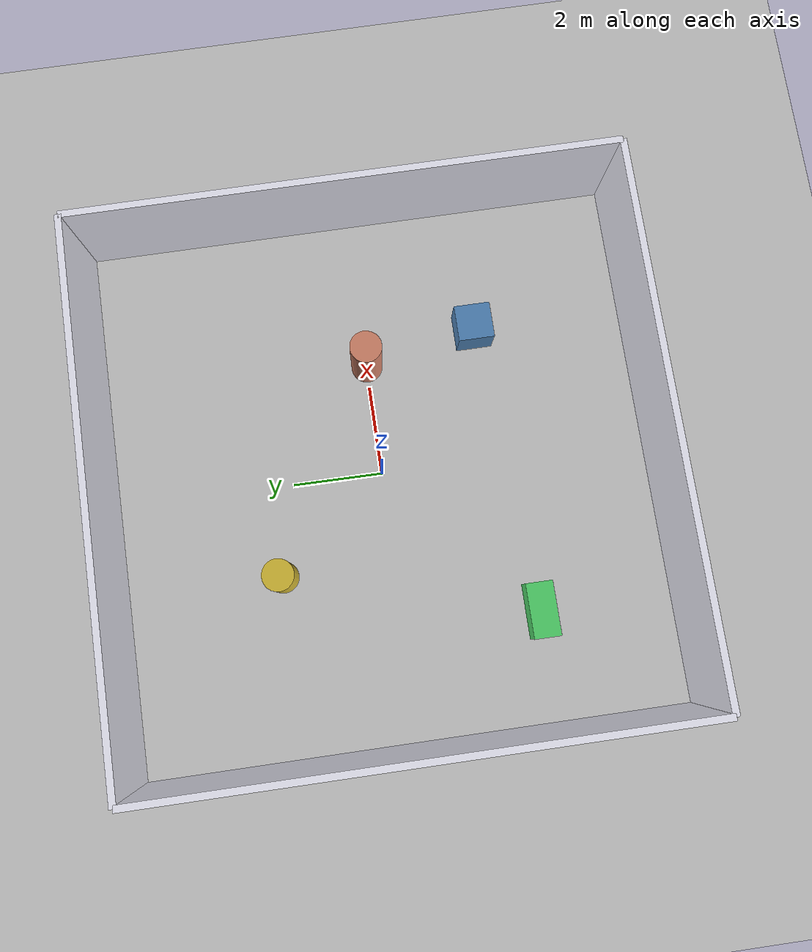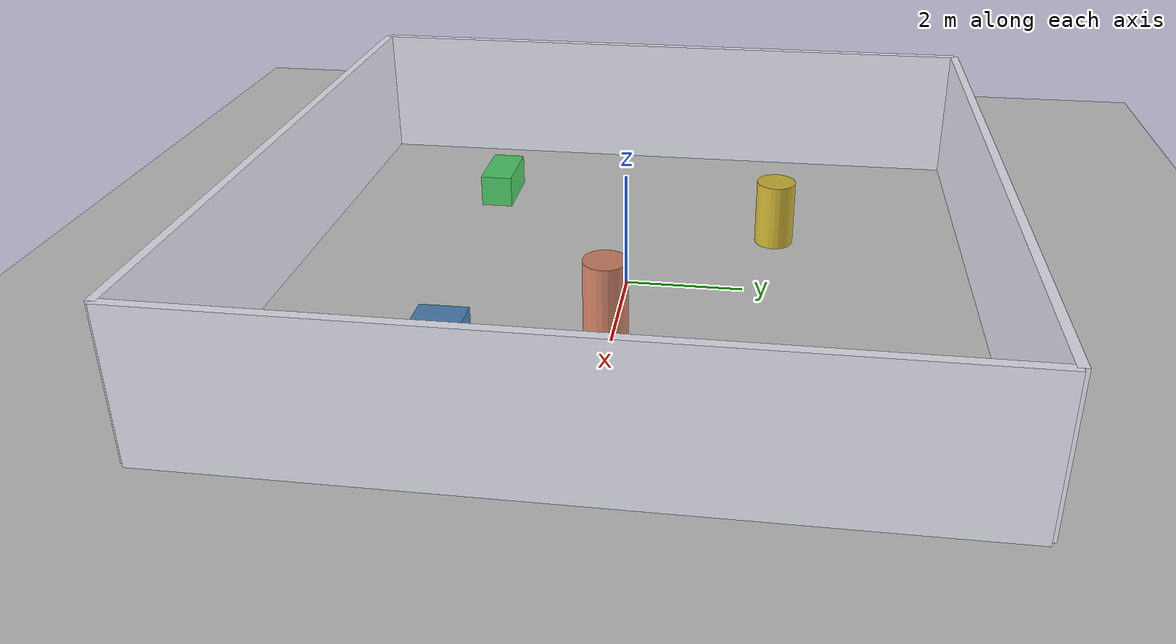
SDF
<?xml version="1.0"?>
<sdf version="1.9">
  <world name="agenticros_indoor">

    <!-- ====== System plugins ====== -->
    <plugin filename="gz-sim-physics-system" name="gz::sim::systems::Physics"/>
    <plugin filename="gz-sim-sensors-system" name="gz::sim::systems::Sensors">
      <render_engine>ogre2</render_engine>
    </plugin>
    <plugin filename="gz-sim-user-commands-system" name="gz::sim::systems::UserCommands"/>
    <plugin filename="gz-sim-scene-broadcaster-system" name="gz::sim::systems::SceneBroadcaster"/>
    <plugin filename="gz-sim-imu-system" name="gz::sim::systems::Imu"/>

    <gravity>0 0 -9.81</gravity>

    <gui fullscreen="false">
      <plugin filename="MinimalScene" name="3D View">
        <gz-gui>
          <title>3D View</title>
          <property type="bool" key="showTitleBar">false</property>
          <property type="string" key="state">docked</property>
        </gz-gui>
        <engine>ogre2</engine>
        <scene>scene</scene>
        <ambient_light>0.4 0.4 0.4</ambient_light>
        <background_color>0.8 0.8 0.8</background_color>
        <camera_pose>-7 -7 6 0 0.6 0.78</camera_pose>
      </plugin>
    </gui>

    <!-- ====== Lighting ====== -->
    <light type="directional" name="sun">
      <cast_shadows>true</cast_shadows>
      <pose>0 0 10 0 0 0</pose>
      <diffuse>0.9 0.9 0.9 1</diffuse>
      <specular>0.2 0.2 0.2 1</specular>
      <direction>-0.3 0.2 -0.9</direction>
    </light>

    <!-- ====== Ground ====== -->
    <model name="ground_plane">
      <static>true</static>
      <link name="link">
        <collision name="collision">
          <geometry><plane><normal>0 0 1</normal><size>20 20</size></plane></geometry>
        </collision>
        <visual name="visual">
          <geometry><plane><normal>0 0 1</normal><size>20 20</size></plane></geometry>
          <material>
            <ambient>0.6 0.6 0.6 1</ambient>
            <diffuse>0.75 0.75 0.75 1</diffuse>
            <specular>0.05 0.05 0.05 1</specular>
          </material>
        </visual>
      </link>
    </model>

    <!-- ====== Walls (12m x 12m room, 2.5m tall, 0.15m thick) ====== -->
    <model name="walls">
      <static>true</static>
      <link name="link">
        <!-- North wall (+Y) -->
        <collision name="north_col">
          <pose>0 6 1.25 0 0 0</pose>
          <geometry><box><size>12 0.15 2.5</size></box></geometry>
        </collision>
        <visual name="north_vis">
          <pose>0 6 1.25 0 0 0</pose>
          <geometry><box><size>12 0.15 2.5</size></box></geometry>
          <material><ambient>0.85 0.85 0.9 1</ambient><diffuse>0.9 0.9 0.95 1</diffuse></material>
        </visual>
        <!-- South wall (-Y) -->
        <collision name="south_col">
          <pose>0 -6 1.25 0 0 0</pose>
          <geometry><box><size>12 0.15 2.5</size></box></geometry>
        </collision>
        <visual name="south_vis">
          <pose>0 -6 1.25 0 0 0</pose>
          <geometry><box><size>12 0.15 2.5</size></box></geometry>
          <material><ambient>0.85 0.85 0.9 1</ambient><diffuse>0.9 0.9 0.95 1</diffuse></material>
        </visual>
        <!-- East wall (+X) -->
        <collision name="east_col">
          <pose>6 0 1.25 0 0 0</pose>
          <geometry><box><size>0.15 12 2.5</size></box></geometry>
        </collision>
        <visual name="east_vis">
          <pose>6 0 1.25 0 0 0</pose>
          <geometry><box><size>0.15 12 2.5</size></box></geometry>
          <material><ambient>0.85 0.85 0.9 1</ambient><diffuse>0.9 0.9 0.95 1</diffuse></material>
        </visual>
        <!-- West wall (-X) -->
        <collision name="west_col">
          <pose>-6 0 1.25 0 0 0</pose>
          <geometry><box><size>0.15 12 2.5</size></box></geometry>
        </collision>
        <visual name="west_vis">
          <pose>-6 0 1.25 0 0 0</pose>
          <geometry><box><size>0.15 12 2.5</size></box></geometry>
          <material><ambient>0.85 0.85 0.9 1</ambient><diffuse>0.9 0.9 0.95 1</diffuse></material>
        </visual>
      </link>
    </model>

    <!-- ====== Person-sized cylinder (for ros2_follow_me depth-mode smoke test) ====== -->
    <!--
      Roughly human-shaped: 0.35 m radius, 1.7 m tall, centered ~2.5 m in front
      of the AMR's spawn pose (the AMR spawns at origin facing +X by default).
    -->
    <model name="person_target">
      <static>true</static>
      <pose>2.5 0 0.85 0 0 0</pose>
      <link name="link">
        <inertial>
          <mass>60</mass>
          <inertia><ixx>14.7</ixx><iyy>14.7</iyy><izz>3.7</izz><ixy>0</ixy><ixz>0</ixz><iyz>0</iyz></inertia>
        </inertial>
        <collision name="collision">
          <geometry><cylinder><radius>0.35</radius><length>1.7</length></cylinder></geometry>
        </collision>
        <visual name="visual">
          <geometry><cylinder><radius>0.35</radius><length>1.7</length></cylinder></geometry>
          <material><ambient>0.7 0.4 0.3 1</ambient><diffuse>0.8 0.5 0.4 1</diffuse></material>
        </visual>
      </link>
    </model>

    <!-- ====== A few static obstacles to give the LIDAR / depth camera structure ====== -->
    <model name="obstacle_box_1">
      <static>true</static>
      <pose>3 -2.5 0.4 0 0 0</pose>
      <link name="link">
        <collision name="c"><geometry><box><size>0.8 0.8 0.8</size></box></geometry></collision>
        <visual name="v">
          <geometry><box><size>0.8 0.8 0.8</size></box></geometry>
          <material><ambient>0.3 0.5 0.7 1</ambient><diffuse>0.3 0.5 0.7 1</diffuse></material>
        </visual>
      </link>
    </model>

    <model name="obstacle_cyl_1">
      <static>true</static>
      <pose>-2 2.5 0.6 0 0 0</pose>
      <link name="link">
        <collision name="c"><geometry><cylinder><radius>0.35</radius><length>1.2</length></cylinder></geometry></collision>
        <visual name="v">
          <geometry><cylinder><radius>0.35</radius><length>1.2</length></cylinder></geometry>
          <material><ambient>0.7 0.6 0.2 1</ambient><diffuse>0.8 0.7 0.2 1</diffuse></material>
        </visual>
      </link>
    </model>

    <model name="obstacle_box_2">
      <static>true</static>
      <pose>-3.5 -3 0.3 0 0 0</pose>
      <link name="link">
        <collision name="c"><geometry><box><size>1.2 0.6 0.6</size></box></geometry></collision>
        <visual name="v">
          <geometry><box><size>1.2 0.6 0.6</size></box></geometry>
          <material><ambient>0.3 0.7 0.4 1</ambient><diffuse>0.3 0.8 0.4 1</diffuse></material>
        </visual>
      </link>
    </model>

  </world>
</sdf>
